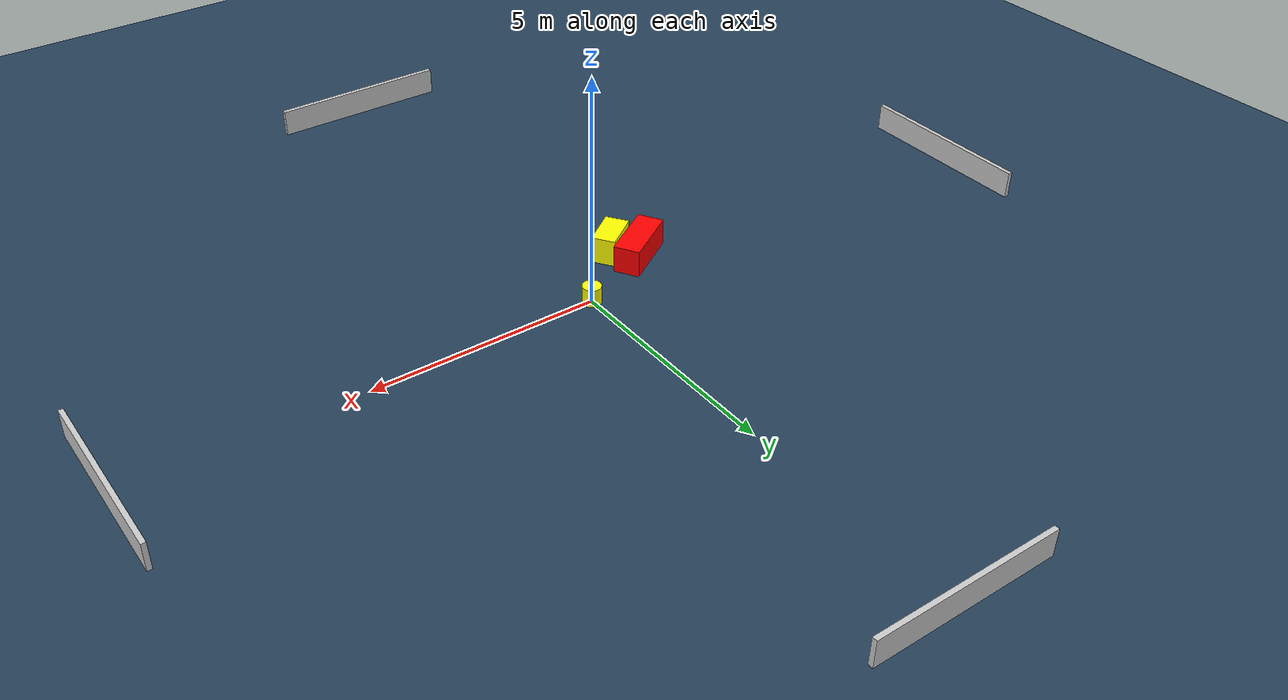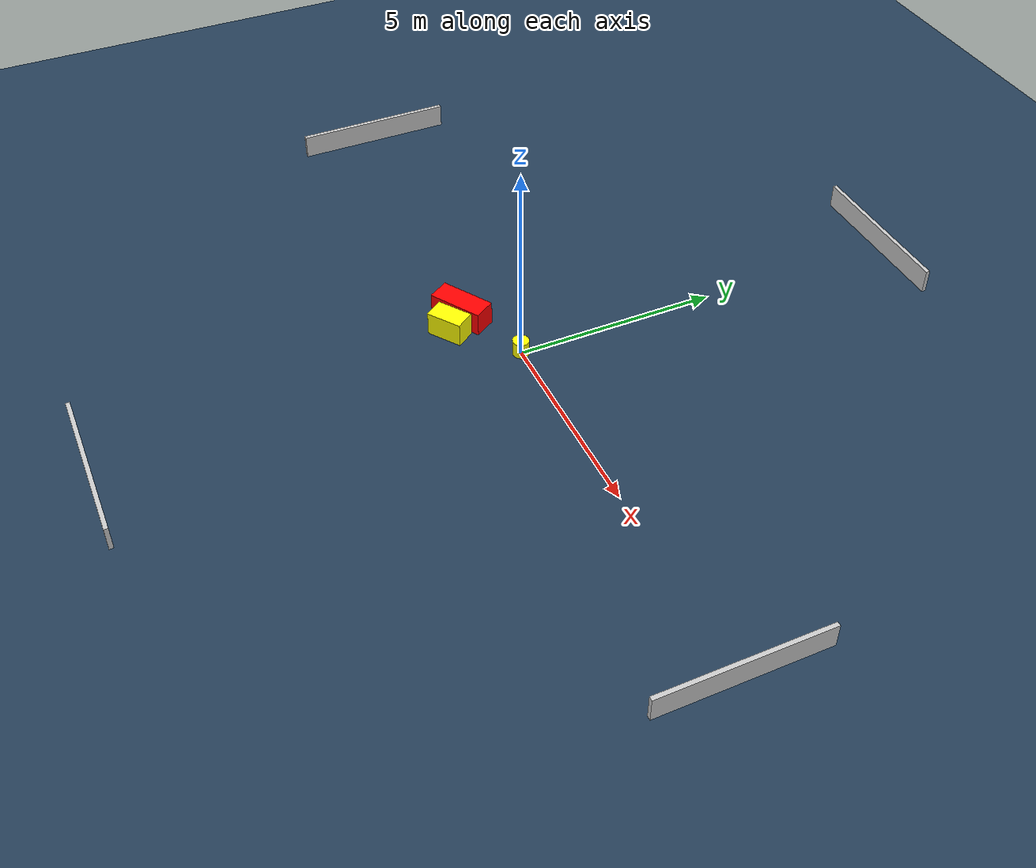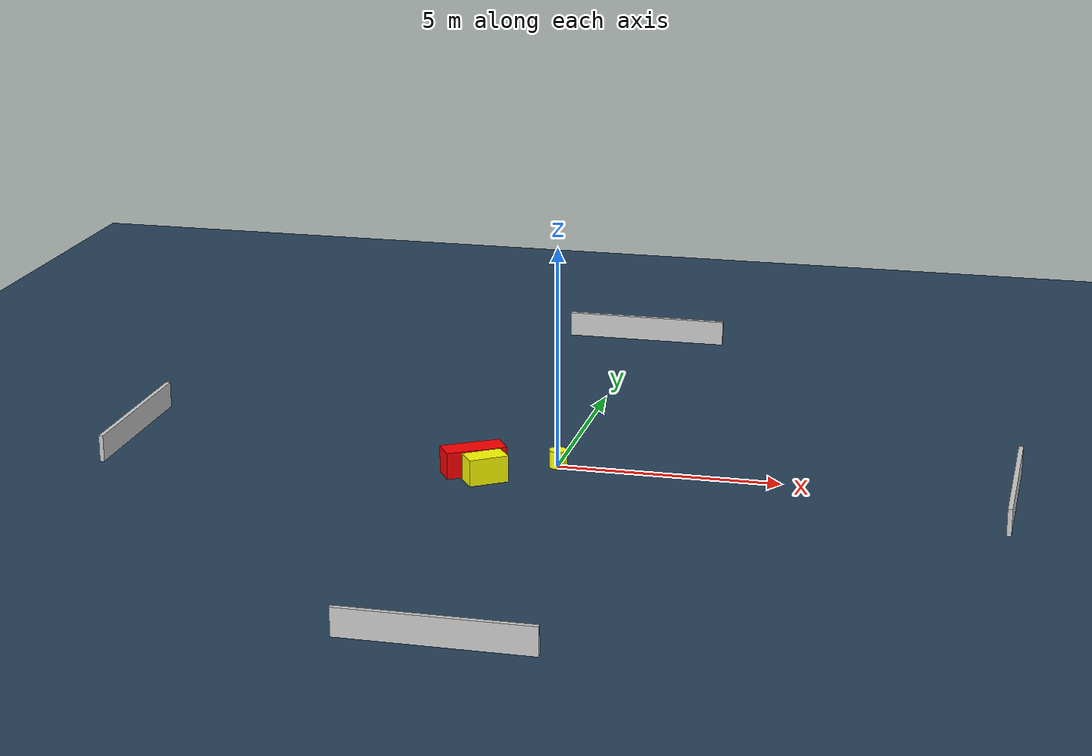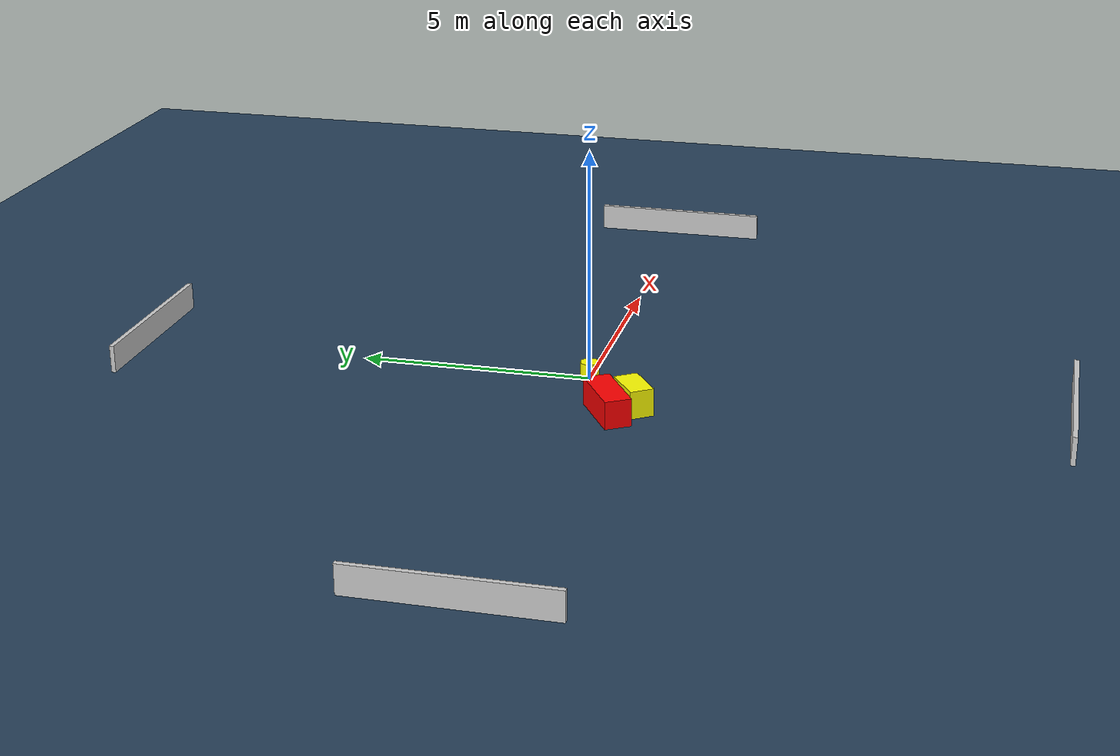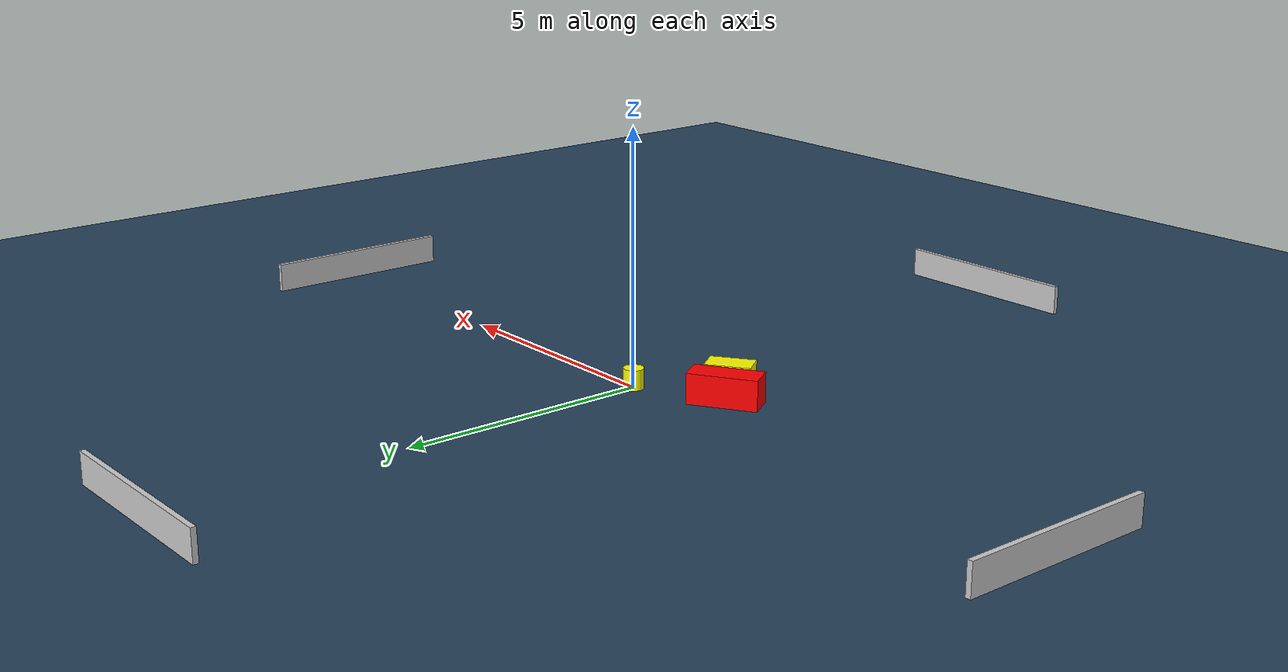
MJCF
<?xml version="1.0" ?>
<mujoco model="generated_environment">
  <option timestep="0.01" integrator="RK4" cone="elliptic"/>
  <default>
    <geom density="1"/>
  </default>
  <asset>
    <texture builtin="gradient" height="3072" name="skybox" rgb1="0.3 0.5 0.7" rgb2="0 0 0" type="skybox" width="512"/>
    <texture builtin="checker" height="300" name="groundplane" rgb1="0.2 0.3 0.4" rgb2="0.1 0.2 0.3" type="2d" width="300"/>
    <material name="groundplane" reflectance="0.2" texrepeat="5 5" texture="groundplane"/>
  </asset>
  <worldbody>
    <light dir="0 0 -1" directional="true" pos="0 0 1.5"/>
    <geom condim="3" friction="0.5 0.005 0.001" material="groundplane" name="floor" pos="0 0 0" size="0 0 0.05" type="plane"/>
    <body name="walls">
      <geom name="wall_1" condim="4" pos="-10.0 0.0 0.3" rgba="0.800000011920929 0.800000011920929 0.800000011920929 1.0" size="0.05 2.0 0.3" type="box"/>
      <geom name="wall_2" condim="4" pos="10.0 0.0 0.3" rgba="0.800000011920929 0.800000011920929 0.800000011920929 1.0" size="0.05 2.0 0.3" type="box"/>
      <geom name="wall_3" condim="4" pos="0.0 -10.0 0.3" rgba="0.800000011920929 0.800000011920929 0.800000011920929 1.0" size="2.0 0.05 0.3" type="box"/>
      <geom name="wall_4" condim="4" pos="0.0 10.0 0.3" rgba="0.800000011920929 0.800000011920929 0.800000011920929 1.0" size="2.0 0.05 0.3" type="box"/>
    </body>
    <body name="robot">
      <joint name="joint_x" type="slide" pos="0 0 0" axis="1 0 0"/>
      <joint name="joint_y" type="slide" pos="0 0 0" axis="0 1 0"/>
      <geom name="robot" type="cylinder" pos="0.0 0.0 0.2" size="0.2 0.2 0.0" mass="5.0" friction="1.0 0.005 0.0001" condim="4" rgba="1.0 1.0 0.0 1.0"/>
    </body>
    <body name="obstacle_1_movable">
      <geom name="obstacle_1_movable" condim="4" pos="-1.3457033547355675 -1.2384539501023617 0.3" euler="0 0 304.69849373670075" friction="0.0 0.005 0.001" rgba="1.0 1.0 0.0 1.0" size="0.25925849667332224 0.44605652487371983 0.3" type="box" mass="0.1"/>
      <joint type="free"/>
    </body>
    <body name="obstacle_2_static">
      <geom name="obstacle_2_static" condim="4" pos="-1.739304531589088 -0.7720104019694866 0.3" euler="0 0 121.73682680899398" friction="0.0 0.005 0.001" rgba="1.0 0.0 0.0 1.0" size="0.2837315428433683 0.6859367666802657 0.3" type="box"/>
    </body>
  </worldbody>
  <actuator>
    <motor name="actuator_x" joint="joint_x" gear="1" ctrlrange="-1 1"/>
    <motor name="actuator_y" joint="joint_y" gear="1" ctrlrange="-1 1"/>
  </actuator>
</mujoco>
